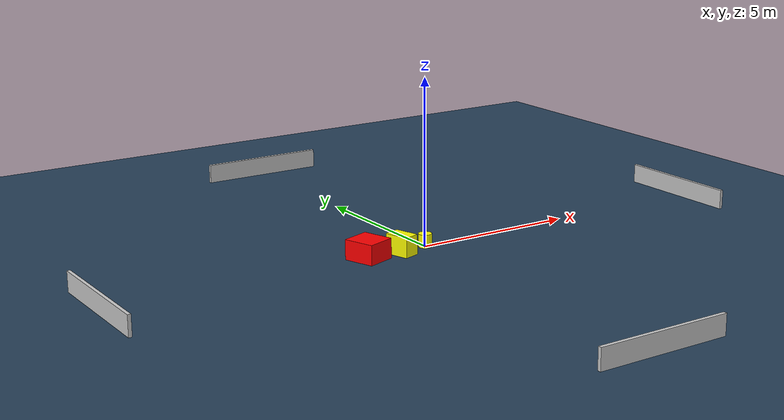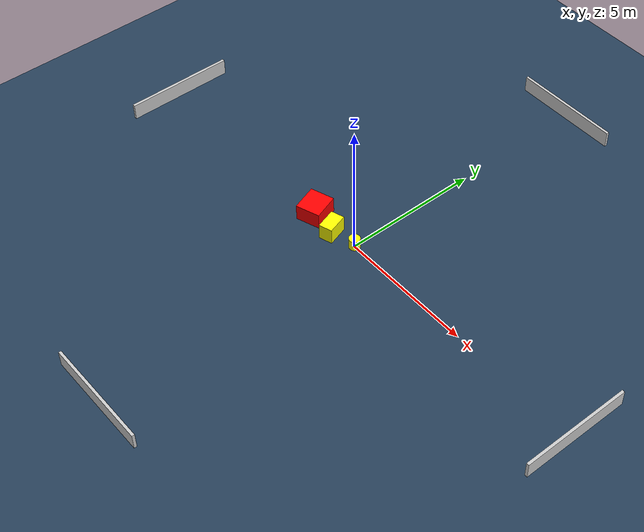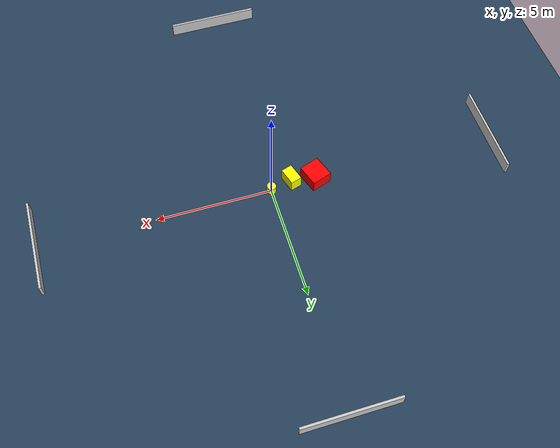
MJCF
<?xml version="1.0" ?>
<mujoco model="generated_environment">
  <option timestep="0.01" integrator="RK4" cone="elliptic"/>
  <default>
    <geom density="1"/>
  </default>
  <asset>
    <texture builtin="gradient" height="3072" name="skybox" rgb1="0.3 0.5 0.7" rgb2="0 0 0" type="skybox" width="512"/>
    <texture builtin="checker" height="300" name="groundplane" rgb1="0.2 0.3 0.4" rgb2="0.1 0.2 0.3" type="2d" width="300"/>
    <material name="groundplane" reflectance="0.2" texrepeat="5 5" texture="groundplane"/>
  </asset>
  <worldbody>
    <light dir="0 0 -1" directional="true" pos="0 0 1.5"/>
    <geom condim="3" friction="0.5 0.005 0.001" material="groundplane" name="floor" pos="0 0 0" size="0 0 0.05" type="plane"/>
    <body name="walls">
      <geom name="wall_1" condim="4" pos="-10.0 0.0 0.3" rgba="0.800000011920929 0.800000011920929 0.800000011920929 1.0" size="0.05 2.0 0.3" type="box"/>
      <geom name="wall_2" condim="4" pos="10.0 0.0 0.3" rgba="0.800000011920929 0.800000011920929 0.800000011920929 1.0" size="0.05 2.0 0.3" type="box"/>
      <geom name="wall_3" condim="4" pos="0.0 -10.0 0.3" rgba="0.800000011920929 0.800000011920929 0.800000011920929 1.0" size="2.0 0.05 0.3" type="box"/>
      <geom name="wall_4" condim="4" pos="0.0 10.0 0.3" rgba="0.800000011920929 0.800000011920929 0.800000011920929 1.0" size="2.0 0.05 0.3" type="box"/>
    </body>
    <body name="robot">
      <joint name="joint_x" type="slide" pos="0 0 0" axis="1 0 0"/>
      <joint name="joint_y" type="slide" pos="0 0 0" axis="0 1 0"/>
      <geom name="robot" type="cylinder" pos="0.0 0.0 0.2" size="0.2 0.2 0.0" mass="5.0" friction="1.0 0.005 0.0001" condim="4" rgba="1.0 1.0 0.0 1.0"/>
    </body>
    <body name="obstacle_1_movable">
      <geom name="obstacle_1_movable" condim="4" pos="-0.9458517201271323 -0.20215458536054828 0.3" euler="0 0 17.319483266755284" friction="0.0 0.005 0.001" rgba="1.0 1.0 0.0 1.0" size="0.24632571847677814 0.3789623983290053 0.3" type="box" mass="0.1"/>
      <joint type="free"/>
    </body>
    <body name="obstacle_2_static">
      <geom name="obstacle_2_static" condim="4" pos="-1.9844571767929051 -0.06848241074653592 0.3" euler="0 0 288.99575747982107" friction="0.0 0.005 0.001" rgba="1.0 0.0 0.0 1.0" size="0.4780188998115889 0.4450197762669591 0.3" type="box"/>
    </body>
  </worldbody>
  <actuator>
    <motor name="actuator_x" joint="joint_x" gear="1" ctrlrange="-1 1"/>
    <motor name="actuator_y" joint="joint_y" gear="1" ctrlrange="-1 1"/>
  </actuator>
</mujoco>
